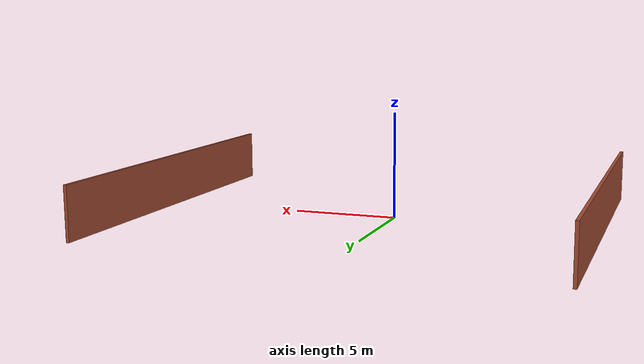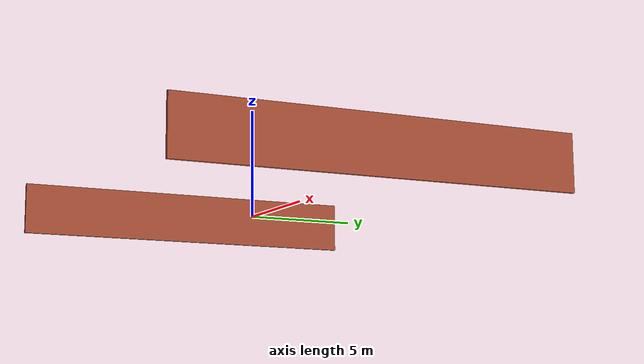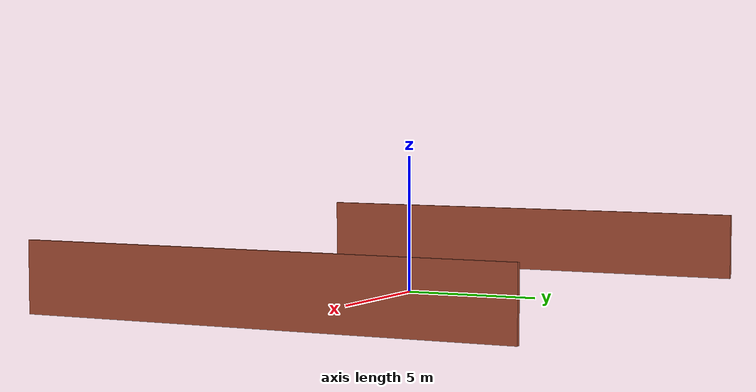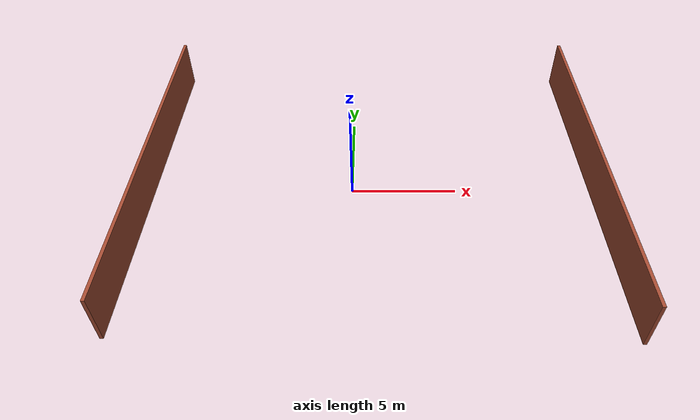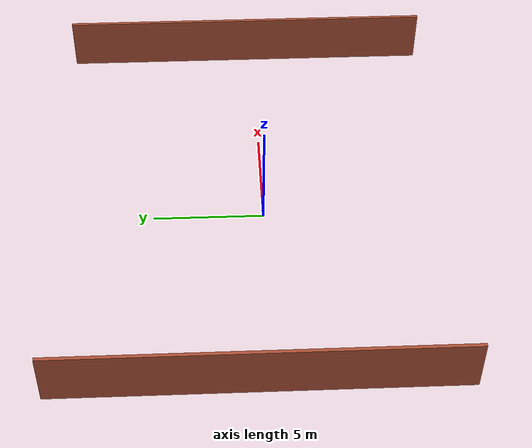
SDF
<?xml version='1.0'?>
<sdf version='1.7'>
  <model name='test1.world'>
    <pose>0.959603 0.409973 0 0 -0 0</pose>
    <link name='Wall_0'>
      <collision name='Wall_0_Collision'>
        <geometry>
          <box>
            <size>17.5 0.15 2.5</size>
          </box>
        </geometry>
        <pose>0 0 1.25 0 -0 0</pose>
      </collision>
      <visual name='Wall_0_Visual'>
        <pose>0 0 1.25 0 -0 0</pose>
        <geometry>
          <box>
            <size>17.5 0.15 2.5</size>
          </box>
        </geometry>
        <material>
          <script>
            <uri>file://media/materials/scripts/gazebo.material</uri>
            <name>Gazebo/Bricks</name>
          </script>
          <ambient>1 1 1 1</ambient>
        </material>
        <meta>
          <layer>0</layer>
        </meta>
      </visual>
      <pose>-10.628 0.141288 0 0 -0 -1.5708</pose>
    </link>
    <link name='Wall_19'>
      <collision name='Wall_19_Collision'>
        <geometry>
          <box>
            <size>17.75 0.15 2.5</size>
          </box>
        </geometry>
        <pose>0 0 1.25 0 -0 0</pose>
      </collision>
      <visual name='Wall_19_Visual'>
        <pose>0 0 1.25 0 -0 0</pose>
        <geometry>
          <box>
            <size>17.75 0.15 2.5</size>
          </box>
        </geometry>
        <material>
          <script>
            <uri>file://media/materials/scripts/gazebo.material</uri>
            <name>Gazebo/Bricks</name>
          </script>
          <ambient>1 1 1 1</ambient>
        </material>
        <meta>
          <layer>0</layer>
        </meta>
      </visual>
      <pose>10.628 -0.016288 0 0 -0 -1.5708</pose>
    </link>
    <static>1</static>
  </model>
</sdf>
